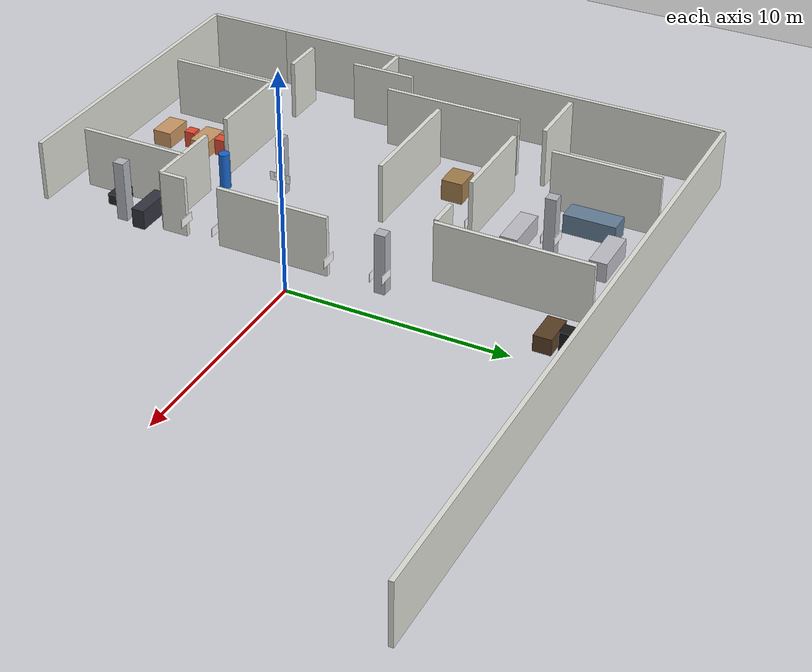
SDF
<sdf version="1.9">
 <world name="realistic_facility_world">
  <model name="ground_plane">
   <static>true</static>
   <link name="link">
    <collision name="collision">
     <geometry><plane><normal>0 0 1</normal><size>36 30</size></plane></geometry>
    </collision>
    <visual name="visual">
     <geometry><plane><normal>0 0 1</normal><size>36 30</size></plane></geometry>
     <material>
      <ambient>0.82 0.82 0.85 1</ambient>
      <diffuse>0.82 0.82 0.85 1</diffuse>
      <specular>0.15 0.15 0.15 1</specular>
     </material>
    </visual>
   </link>
  </model>
  <model name="wall_south_left">
   <static>true</static>
   <pose>-8.750 -13.000 1.4 0 0 0</pose>
   <link name="link">
    <collision name="collision"><geometry><box><size>14.500 0.200 2.8</size></box></geometry></collision>
    <visual name="visual">
     <geometry><box><size>14.500 0.200 2.8</size></box></geometry>
     <material>
      <ambient>0.88 0.88 0.85 1</ambient>
      <diffuse>0.88 0.88 0.85 1</diffuse>
      <specular>0.1 0.1 0.1 1</specular>
     </material>
    </visual>
   </link>
  </model>
  <model name="wall_north">
   <static>true</static>
   <pose>0.000 13.000 1.4 0 0 0</pose>
   <link name="link">
    <collision name="collision"><geometry><box><size>32.000 0.200 2.8</size></box></geometry></collision>
    <visual name="visual">
     <geometry><box><size>32.000 0.200 2.8</size></box></geometry>
     <material>
      <ambient>0.88 0.88 0.85 1</ambient>
      <diffuse>0.88 0.88 0.85 1</diffuse>
      <specular>0.1 0.1 0.1 1</specular>
     </material>
    </visual>
   </link>
  </model>
  <model name="wall_west_south">
   <static>true</static>
   <pose>-16.000 -11.000 1.4 0 0 0</pose>
   <link name="link">
    <collision name="collision"><geometry><box><size>0.200 4.000 2.8</size></box></geometry></collision>
    <visual name="visual">
     <geometry><box><size>0.200 4.000 2.8</size></box></geometry>
     <material>
      <ambient>0.88 0.88 0.85 1</ambient>
      <diffuse>0.88 0.88 0.85 1</diffuse>
      <specular>0.1 0.1 0.1 1</specular>
     </material>
    </visual>
   </link>
  </model>
  <model name="wall_west_mid_north">
   <static>true</static>
   <pose>-16.000 2.000 1.4 0 0 0</pose>
   <link name="link">
    <collision name="collision"><geometry><box><size>0.200 22.000 2.8</size></box></geometry></collision>
    <visual name="visual">
     <geometry><box><size>0.200 22.000 2.8</size></box></geometry>
     <material>
      <ambient>0.88 0.88 0.85 1</ambient>
      <diffuse>0.88 0.88 0.85 1</diffuse>
      <specular>0.1 0.1 0.1 1</specular>
     </material>
    </visual>
   </link>
  </model>
  <model name="wall_rec_div_w1_a">
   <static>true</static>
   <pose>-14.014 -7.000 1.4 0 0 0</pose>
   <link name="link">
    <collision name="collision"><geometry><box><size>1.950 0.200 2.8</size></box></geometry></collision>
    <visual name="visual">
     <geometry><box><size>1.950 0.200 2.8</size></box></geometry>
     <material>
      <ambient>0.88 0.88 0.85 1</ambient>
      <diffuse>0.88 0.88 0.85 1</diffuse>
      <specular>0.1 0.1 0.1 1</specular>
     </material>
    </visual>
   </link>
  </model>
  <model name="wall_rec_div_w1_b">
   <static>true</static>
   <pose>-9.375 -7.000 1.4 0 0 0</pose>
   <link name="link">
    <collision name="collision"><geometry><box><size>4.750 0.200 2.8</size></box></geometry></collision>
    <visual name="visual">
     <geometry><box><size>4.750 0.200 2.8</size></box></geometry>
     <material>
      <ambient>0.88 0.88 0.85 1</ambient>
      <diffuse>0.88 0.88 0.85 1</diffuse>
      <specular>0.1 0.1 0.1 1</specular>
     </material>
    </visual>
   </link>
  </model>
  <model name="wall_rec_div_w2">
   <static>true</static>
   <pose>-3.600 -7.000 1.4 0 0 0</pose>
   <link name="link">
    <collision name="collision"><geometry><box><size>3.600 0.200 2.8</size></box></geometry></collision>
    <visual name="visual">
     <geometry><box><size>3.600 0.200 2.8</size></box></geometry>
     <material>
      <ambient>0.88 0.88 0.85 1</ambient>
      <diffuse>0.88 0.88 0.85 1</diffuse>
      <specular>0.1 0.1 0.1 1</specular>
     </material>
    </visual>
   </link>
  </model>
  <model name="wall_spine_w_south">
   <static>true</static>
   <pose>-1.800 -6.400 1.4 0 0 0</pose>
   <link name="link">
    <collision name="collision"><geometry><box><size>0.200 1.200 2.8</size></box></geometry></collision>
    <visual name="visual">
     <geometry><box><size>0.200 1.200 2.8</size></box></geometry>
     <material>
      <ambient>0.88 0.88 0.85 1</ambient>
      <diffuse>0.88 0.88 0.85 1</diffuse>
      <specular>0.1 0.1 0.1 1</specular>
     </material>
    </visual>
   </link>
  </model>
  <model name="wall_spine_w_mid">
   <static>true</static>
   <pose>-1.800 -1.600 1.4 0 0 0</pose>
   <link name="link">
    <collision name="collision"><geometry><box><size>0.200 5.200 2.8</size></box></geometry></collision>
    <visual name="visual">
     <geometry><box><size>0.200 5.200 2.8</size></box></geometry>
     <material>
      <ambient>0.88 0.88 0.85 1</ambient>
      <diffuse>0.88 0.88 0.85 1</diffuse>
      <specular>0.1 0.1 0.1 1</specular>
     </material>
    </visual>
   </link>
  </model>
  <model name="wall_cafe_e">
   <static>true</static>
   <pose>-3.500 -9.500 1.4 0 0 0</pose>
   <link name="link">
    <collision name="collision"><geometry><box><size>0.200 5.000 2.8</size></box></geometry></collision>
    <visual name="visual">
     <geometry><box><size>0.200 5.000 2.8</size></box></geometry>
     <material>
      <ambient>0.88 0.88 0.85 1</ambient>
      <diffuse>0.88 0.88 0.85 1</diffuse>
      <specular>0.1 0.1 0.1 1</specular>
     </material>
    </visual>
   </link>
  </model>
  <model name="wall_cafe_w">
   <static>true</static>
   <pose>-11.000 -9.500 1.4 0 0 0</pose>
   <link name="link">
    <collision name="collision"><geometry><box><size>0.200 5.000 2.8</size></box></geometry></collision>
    <visual name="visual">
     <geometry><box><size>0.200 5.000 2.8</size></box></geometry>
     <material>
      <ambient>0.88 0.88 0.85 1</ambient>
      <diffuse>0.88 0.88 0.85 1</diffuse>
      <specular>0.1 0.1 0.1 1</specular>
     </material>
    </visual>
   </link>
  </model>
  <model name="wall_utility_n">
   <static>true</static>
   <pose>-15.200 -3.000 1.4 0 0 0</pose>
   <link name="link">
    <collision name="collision"><geometry><box><size>1.600 0.200 2.8</size></box></geometry></collision>
    <visual name="visual">
     <geometry><box><size>1.600 0.200 2.8</size></box></geometry>
     <material>
      <ambient>0.88 0.88 0.85 1</ambient>
      <diffuse>0.88 0.88 0.85 1</diffuse>
      <specular>0.1 0.1 0.1 1</specular>
     </material>
    </visual>
   </link>
  </model>
  <model name="wall_utility_e">
   <static>true</static>
   <pose>-14.400 -2.937 1.4 0 0 0</pose>
   <link name="link">
    <collision name="collision"><geometry><box><size>0.200 3.000 2.8</size></box></geometry></collision>
    <visual name="visual">
     <geometry><box><size>0.200 3.000 2.8</size></box></geometry>
     <material>
      <ambient>0.88 0.88 0.85 1</ambient>
      <diffuse>0.88 0.88 0.85 1</diffuse>
      <specular>0.1 0.1 0.1 1</specular>
     </material>
    </visual>
   </link>
  </model>
  <model name="wall_cross_w">
   <static>true</static>
   <pose>-9.350 1.000 1.4 0 0 0</pose>
   <link name="link">
    <collision name="collision"><geometry><box><size>5.700 0.200 2.8</size></box></geometry></collision>
    <visual name="visual">
     <geometry><box><size>5.700 0.200 2.8</size></box></geometry>
     <material>
      <ambient>0.88 0.88 0.85 1</ambient>
      <diffuse>0.88 0.88 0.85 1</diffuse>
      <specular>0.1 0.1 0.1 1</specular>
     </material>
    </visual>
   </link>
  </model>
  <model name="wall_office_w">
   <static>true</static>
   <pose>-3.500 8.500 1.4 0 0 0</pose>
   <link name="link">
    <collision name="collision"><geometry><box><size>0.200 7.000 2.8</size></box></geometry></collision>
    <visual name="visual">
     <geometry><box><size>0.200 7.000 2.8</size></box></geometry>
     <material>
      <ambient>0.88 0.88 0.85 1</ambient>
      <diffuse>0.88 0.88 0.85 1</diffuse>
      <specular>0.1 0.1 0.1 1</specular>
     </material>
    </visual>
   </link>
  </model>
  <model name="wall_storage_div_w">
   <static>true</static>
   <pose>-9.250 5.000 1.4 0 0 0</pose>
   <link name="link">
    <collision name="collision"><geometry><box><size>4.500 0.200 2.8</size></box></geometry></collision>
    <visual name="visual">
     <geometry><box><size>4.500 0.200 2.8</size></box></geometry>
     <material>
      <ambient>0.88 0.88 0.85 1</ambient>
      <diffuse>0.88 0.88 0.85 1</diffuse>
      <specular>0.1 0.1 0.1 1</specular>
     </material>
    </visual>
   </link>
  </model>
  <model name="wall_storage_div_e">
   <static>true</static>
   <pose>-4.357 5.000 1.4 0 0 0</pose>
   <link name="link">
    <collision name="collision"><geometry><box><size>1.400 0.200 2.8</size></box></geometry></collision>
    <visual name="visual">
     <geometry><box><size>1.400 0.200 2.8</size></box></geometry>
     <material>
      <ambient>0.88 0.88 0.85 1</ambient>
      <diffuse>0.88 0.88 0.85 1</diffuse>
      <specular>0.1 0.1 0.1 1</specular>
     </material>
    </visual>
   </link>
  </model>
  <model name="wall_vault_e">
   <static>true</static>
   <pose>-11.000 9.500 1.4 0 0 0</pose>
   <link name="link">
    <collision name="collision"><geometry><box><size>0.200 5.000 2.8</size></box></geometry></collision>
    <visual name="visual">
     <geometry><box><size>0.200 5.000 2.8</size></box></geometry>
     <material>
      <ambient>0.88 0.88 0.85 1</ambient>
      <diffuse>0.88 0.88 0.85 1</diffuse>
      <specular>0.1 0.1 0.1 1</specular>
     </material>
    </visual>
   </link>
  </model>
  <model name="wall_vault_s">
   <static>true</static>
   <pose>-14.000 6.000 1.4 0 0 0</pose>
   <link name="link">
    <collision name="collision"><geometry><box><size>3.000 0.200 2.8</size></box></geometry></collision>
    <visual name="visual">
     <geometry><box><size>3.000 0.200 2.8</size></box></geometry>
     <material>
      <ambient>0.88 0.88 0.85 1</ambient>
      <diffuse>0.88 0.88 0.85 1</diffuse>
      <specular>0.1 0.1 0.1 1</specular>
     </material>
    </visual>
   </link>
  </model>
  <model name="wall_west_bypass_inner">
   <static>true</static>
   <pose>-12.900 1.350 1.4 0 0 0</pose>
   <link name="link">
    <collision name="collision"><geometry><box><size>0.200 6.500 2.8</size></box></geometry></collision>
    <visual name="visual">
     <geometry><box><size>0.200 6.500 2.8</size></box></geometry>
     <material>
      <ambient>0.88 0.88 0.85 1</ambient>
      <diffuse>0.88 0.88 0.85 1</diffuse>
      <specular>0.1 0.1 0.1 1</specular>
     </material>
    </visual>
   </link>
  </model>
  <model name="pillar_rec_1">
   <static>true</static>
   <pose>-1.800 -9.000 1.4 0 0 0</pose>
   <link name="link">
    <collision name="collision"><geometry><box><size>0.500 0.500 2.8</size></box></geometry></collision>
    <visual name="visual">
     <geometry><box><size>0.500 0.500 2.8</size></box></geometry>
     <material><ambient>0.7 0.72 0.75 1</ambient><diffuse>0.7 0.72 0.75 1</diffuse></material>
    </visual>
   </link>
  </model>
  <model name="pillar_center_1">
   <static>true</static>
   <pose>-1.800 3.500 1.4 0 0 0</pose>
   <link name="link">
    <collision name="collision"><geometry><box><size>0.500 0.500 2.8</size></box></geometry></collision>
    <visual name="visual">
     <geometry><box><size>0.500 0.500 2.8</size></box></geometry>
     <material><ambient>0.7 0.72 0.75 1</ambient><diffuse>0.7 0.72 0.75 1</diffuse></material>
    </visual>
   </link>
  </model>
  <model name="pillar_lab_1">
   <static>true</static>
   <pose>-7.500 8.500 1.4 0 0 0</pose>
   <link name="link">
    <collision name="collision"><geometry><box><size>0.500 0.500 2.8</size></box></geometry></collision>
    <visual name="visual">
     <geometry><box><size>0.500 0.500 2.8</size></box></geometry>
     <material><ambient>0.7 0.72 0.75 1</ambient><diffuse>0.7 0.72 0.75 1</diffuse></material>
    </visual>
   </link>
  </model>
  <model name="pillar_j3">
   <static>true</static>
   <pose>-6.800 -4.000 1.4 0 0 0</pose>
   <link name="link">
    <collision name="collision"><geometry><box><size>0.400 0.400 2.8</size></box></geometry></collision>
    <visual name="visual">
     <geometry><box><size>0.400 0.400 2.8</size></box></geometry>
     <material><ambient>0.7 0.72 0.75 1</ambient><diffuse>0.7 0.72 0.75 1</diffuse></material>
    </visual>
   </link>
  </model>
  <model name="reception_desk">
   <static>true</static>
   <pose>-2.200 -8.000 0.450 0 0 0</pose>
   <link name="link">
    <collision name="collision"><geometry><box><size>1.800 0.600 0.900</size></box></geometry></collision>
    <visual name="visual">
     <geometry><box><size>1.800 0.600 0.900</size></box></geometry>
     <material><ambient>0.20 0.20 0.25 1</ambient><diffuse>0.20 0.20 0.25 1</diffuse></material>
    </visual>
   </link>
  </model>
  <model name="waiting_bench_w">
   <static>true</static>
   <pose>-3.200 -10.000 0.250 0 0 0</pose>
   <link name="link">
    <collision name="collision"><geometry><box><size>1.600 0.600 0.500</size></box></geometry></collision>
    <visual name="visual">
     <geometry><box><size>1.600 0.600 0.500</size></box></geometry>
     <material><ambient>0.15 0.15 0.15 1</ambient><diffuse>0.15 0.15 0.15 1</diffuse></material>
    </visual>
   </link>
  </model>
  <model name="office_desk_1">
   <static>true</static>
   <pose>-1.500 11.000 0.380 0 0 0</pose>
   <link name="link">
    <collision name="collision"><geometry><box><size>1.500 0.800 0.750</size></box></geometry></collision>
    <visual name="visual">
     <geometry><box><size>1.500 0.800 0.750</size></box></geometry>
     <material><ambient>0.35 0.25 0.15 1</ambient><diffuse>0.35 0.25 0.15 1</diffuse></material>
    </visual>
   </link>
  </model>
  <model name="office_chair_1">
   <static>true</static>
   <pose>-1.500 11.800 0.450 0 0 0</pose>
   <link name="link">
    <collision name="collision"><geometry><box><size>0.600 0.600 0.900</size></box></geometry></collision>
    <visual name="visual">
     <geometry><box><size>0.600 0.600 0.900</size></box></geometry>
     <material><ambient>0.10 0.10 0.10 1</ambient><diffuse>0.10 0.10 0.10 1</diffuse></material>
    </visual>
   </link>
  </model>
  <model name="lab_bench_1">
   <static>true</static>
   <pose>-7.600 7.000 0.450 0 0 0</pose>
   <link name="link">
    <collision name="collision"><geometry><box><size>2.200 0.800 0.900</size></box></geometry></collision>
    <visual name="visual">
     <geometry><box><size>2.200 0.800 0.900</size></box></geometry>
     <material><ambient>0.75 0.75 0.78 1</ambient><diffuse>0.75 0.75 0.78 1</diffuse></material>
    </visual>
   </link>
  </model>
  <model name="lab_bench_2">
   <static>true</static>
   <pose>-7.600 11.000 0.450 0 0 0</pose>
   <link name="link">
    <collision name="collision"><geometry><box><size>2.200 0.800 0.900</size></box></geometry></collision>
    <visual name="visual">
     <geometry><box><size>2.200 0.800 0.900</size></box></geometry>
     <material><ambient>0.75 0.75 0.78 1</ambient><diffuse>0.75 0.75 0.78 1</diffuse></material>
    </visual>
   </link>
  </model>
  <model name="room_a_assembly_bench">
   <static>true</static>
   <pose>-9.800 9.500 0.450 0 0 0</pose>
   <link name="link">
    <collision name="collision"><geometry><box><size>1.000 2.400 0.900</size></box></geometry></collision>
    <visual name="visual">
     <geometry><box><size>1.000 2.400 0.900</size></box></geometry>
     <material><ambient>0.40 0.50 0.60 1</ambient><diffuse>0.40 0.50 0.60 1</diffuse></material>
    </visual>
   </link>
  </model>
  <model name="charging_dock_station">
   <static>true</static>
   <pose>-15.200 2.000 0.500 0 0 0</pose>
   <link name="link">
    <collision name="collision"><geometry><box><size>0.600 1.000 1.000</size></box></geometry></collision>
    <visual name="visual">
     <geometry><box><size>0.600 1.000 1.000</size></box></geometry>
     <material><ambient>0.10 0.70 0.20 1</ambient><diffuse>0.10 0.70 0.20 1</diffuse></material>
    </visual>
   </link>
  </model>
  <model name="cafe_table_1">
   <static>true</static>
   <pose>-8.500 -9.000 0.380 0 0 0</pose>
   <link name="link">
    <collision name="collision"><geometry><box><size>1.400 0.900 0.750</size></box></geometry></collision>
    <visual name="visual">
     <geometry><box><size>1.400 0.900 0.750</size></box></geometry>
     <material><ambient>0.80 0.60 0.40 1</ambient><diffuse>0.80 0.60 0.40 1</diffuse></material>
    </visual>
   </link>
  </model>
  <model name="cafe_table_2">
   <static>true</static>
   <pose>-8.500 -11.000 0.380 0 0 0</pose>
   <link name="link">
    <collision name="collision"><geometry><box><size>1.400 0.900 0.750</size></box></geometry></collision>
    <visual name="visual">
     <geometry><box><size>1.400 0.900 0.750</size></box></geometry>
     <material><ambient>0.80 0.60 0.40 1</ambient><diffuse>0.80 0.60 0.40 1</diffuse></material>
    </visual>
   </link>
  </model>
  <model name="cafe_chair_1">
   <static>true</static>
   <pose>-8.500 -8.200 0.400 0 0 0</pose>
   <link name="link">
    <collision name="collision"><geometry><box><size>0.500 0.500 0.800</size></box></geometry></collision>
    <visual name="visual">
     <geometry><box><size>0.500 0.500 0.800</size></box></geometry>
     <material><ambient>0.90 0.30 0.20 1</ambient><diffuse>0.90 0.30 0.20 1</diffuse></material>
    </visual>
   </link>
  </model>
  <model name="cafe_chair_2">
   <static>true</static>
   <pose>-8.500 -9.800 0.400 0 0 0</pose>
   <link name="link">
    <collision name="collision"><geometry><box><size>0.500 0.500 0.800</size></box></geometry></collision>
    <visual name="visual">
     <geometry><box><size>0.500 0.500 0.800</size></box></geometry>
     <material><ambient>0.90 0.30 0.20 1</ambient><diffuse>0.90 0.30 0.20 1</diffuse></material>
    </visual>
   </link>
  </model>
  <model name="storage_box_stack">
   <static>true</static>
   <pose>-10.000 3.000 0.500 0 0 0</pose>
   <link name="link">
    <collision name="collision"><geometry><box><size>1.200 1.000 1.000</size></box></geometry></collision>
    <visual name="visual">
     <geometry><box><size>1.200 1.000 1.000</size></box></geometry>
     <material><ambient>0.65 0.50 0.30 1</ambient><diffuse>0.65 0.50 0.30 1</diffuse></material>
    </visual>
   </link>
  </model>
  <model name="sign_j1_exit">
   <static>true</static>
   <pose>-1.650 -4.250 0.850 0.0 0.0 3.1416</pose>
   <link name="link">
    <visual name="board_visual">
     <geometry><box><size>0.8 0.03 0.4</size></box></geometry>
     <material>
      <ambient>1.0 1.0 1.0 1.0</ambient>
      <diffuse>1.0 1.0 1.0 1.0</diffuse>
      <specular>0.2 0.2 0.2 1.0</specular>
      <emissive>0.08 0.08 0.08 1.0</emissive>
      <pbr>
       <metal>
        <albedo_map>/home/soham-darade/CV_Autonomous_Navigation/ros2_ws/src/autonomous_robot_gazebo/materials/textures/signs/exit_left.png</albedo_map>
        <roughness>0.2</roughness>
        <metalness>0.0</metalness>
       </metal>
      </pbr>
     </material>
    </visual>
    <collision name="board_collision"><geometry><box><size>0.8 0.03 0.4</size></box></geometry></collision>
   </link>
  </model>
  <model name="sign_j1_reception_south">
   <static>true</static>
   <pose>-1.650 -5.750 0.850 0.0 0.0 0.0000</pose>
   <link name="link">
    <visual name="board_visual">
     <geometry><box><size>0.8 0.03 0.4</size></box></geometry>
     <material>
      <ambient>1.0 1.0 1.0 1.0</ambient>
      <diffuse>1.0 1.0 1.0 1.0</diffuse>
      <specular>0.2 0.2 0.2 1.0</specular>
      <emissive>0.08 0.08 0.08 1.0</emissive>
      <pbr>
       <metal>
        <albedo_map>/home/soham-darade/CV_Autonomous_Navigation/ros2_ws/src/autonomous_robot_gazebo/materials/textures/signs/reception_straight.png</albedo_map>
        <roughness>0.2</roughness>
        <metalness>0.0</metalness>
       </metal>
      </pbr>
     </material>
    </visual>
    <collision name="board_collision"><geometry><box><size>0.8 0.03 0.4</size></box></geometry></collision>
   </link>
  </model>
  <model name="sign_j3_exit">
   <static>true</static>
   <pose>-6.550 -4.100 0.850 0.0 0.0 -1.5708</pose>
   <link name="link">
    <visual name="board_visual">
     <geometry><box><size>0.8 0.03 0.4</size></box></geometry>
     <material>
      <ambient>1.0 1.0 1.0 1.0</ambient>
      <diffuse>1.0 1.0 1.0 1.0</diffuse>
      <specular>0.2 0.2 0.2 1.0</specular>
      <emissive>0.08 0.08 0.08 1.0</emissive>
      <pbr>
       <metal>
        <albedo_map>/home/soham-darade/CV_Autonomous_Navigation/ros2_ws/src/autonomous_robot_gazebo/materials/textures/signs/exit_straight.png</albedo_map>
        <roughness>0.2</roughness>
        <metalness>0.0</metalness>
       </metal>
      </pbr>
     </material>
    </visual>
    <collision name="board_collision"><geometry><box><size>0.8 0.03 0.4</size></box></geometry></collision>
   </link>
  </model>
  <model name="sign_j3_storage">
   <static>true</static>
   <pose>-6.550 -3.900 0.850 0.0 0.0 -1.5708</pose>
   <link name="link">
    <visual name="board_visual">
     <geometry><box><size>0.8 0.03 0.4</size></box></geometry>
     <material>
      <ambient>1.0 1.0 1.0 1.0</ambient>
      <diffuse>1.0 1.0 1.0 1.0</diffuse>
      <specular>0.2 0.2 0.2 1.0</specular>
      <emissive>0.08 0.08 0.08 1.0</emissive>
      <pbr>
       <metal>
        <albedo_map>/home/soham-darade/CV_Autonomous_Navigation/ros2_ws/src/autonomous_robot_gazebo/materials/textures/signs/storage_right.png</albedo_map>
        <roughness>0.2</roughness>
        <metalness>0.0</metalness>
       </metal>
      </pbr>
     </material>
    </visual>
    <collision name="board_collision"><geometry><box><size>0.8 0.03 0.4</size></box></geometry></collision>
   </link>
  </model>
  <model name="sign_j4_office">
   <static>true</static>
   <pose>-1.650 3.200 0.850 0.0 0.0 3.1416</pose>
   <link name="link">
    <visual name="board_visual">
     <geometry><box><size>0.8 0.03 0.4</size></box></geometry>
     <material>
      <ambient>1.0 1.0 1.0 1.0</ambient>
      <diffuse>1.0 1.0 1.0 1.0</diffuse>
      <specular>0.2 0.2 0.2 1.0</specular>
      <emissive>0.08 0.08 0.08 1.0</emissive>
      <pbr>
       <metal>
        <albedo_map>/home/soham-darade/CV_Autonomous_Navigation/ros2_ws/src/autonomous_robot_gazebo/materials/textures/signs/office_straight.png</albedo_map>
        <roughness>0.2</roughness>
        <metalness>0.0</metalness>
       </metal>
      </pbr>
     </material>
    </visual>
    <collision name="board_collision"><geometry><box><size>0.8 0.03 0.4</size></box></geometry></collision>
   </link>
  </model>
  <model name="sign_j4_lab">
   <static>true</static>
   <pose>-1.650 1.100 0.850 0.0 0.0 3.1416</pose>
   <link name="link">
    <visual name="board_visual">
     <geometry><box><size>0.8 0.03 0.4</size></box></geometry>
     <material>
      <ambient>1.0 1.0 1.0 1.0</ambient>
      <diffuse>1.0 1.0 1.0 1.0</diffuse>
      <specular>0.2 0.2 0.2 1.0</specular>
      <emissive>0.08 0.08 0.08 1.0</emissive>
      <pbr>
       <metal>
        <albedo_map>/home/soham-darade/CV_Autonomous_Navigation/ros2_ws/src/autonomous_robot_gazebo/materials/textures/signs/lab_left.png</albedo_map>
        <roughness>0.2</roughness>
        <metalness>0.0</metalness>
       </metal>
      </pbr>
     </material>
    </visual>
    <collision name="board_collision"><geometry><box><size>0.8 0.03 0.4</size></box></geometry></collision>
   </link>
  </model>
  <model name="sign_j4_reception">
   <static>true</static>
   <pose>-1.650 3.750 0.850 0.0 0.0 0.0000</pose>
   <link name="link">
    <visual name="board_visual">
     <geometry><box><size>0.8 0.03 0.4</size></box></geometry>
     <material>
      <ambient>1.0 1.0 1.0 1.0</ambient>
      <diffuse>1.0 1.0 1.0 1.0</diffuse>
      <specular>0.2 0.2 0.2 1.0</specular>
      <emissive>0.08 0.08 0.08 1.0</emissive>
      <pbr>
       <metal>
        <albedo_map>/home/soham-darade/CV_Autonomous_Navigation/ros2_ws/src/autonomous_robot_gazebo/materials/textures/signs/reception_straight.png</albedo_map>
        <roughness>0.2</roughness>
        <metalness>0.0</metalness>
       </metal>
      </pbr>
     </material>
    </visual>
    <collision name="board_collision"><geometry><box><size>0.8 0.03 0.4</size></box></geometry></collision>
   </link>
  </model>
  <model name="sign_j7_storage">
   <static>true</static>
   <pose>-5.300 4.900 0.850 0.0 0.0 3.1416</pose>
   <link name="link">
    <visual name="board_visual">
     <geometry><box><size>0.8 0.03 0.4</size></box></geometry>
     <material>
      <ambient>1.0 1.0 1.0 1.0</ambient>
      <diffuse>1.0 1.0 1.0 1.0</diffuse>
      <specular>0.2 0.2 0.2 1.0</specular>
      <emissive>0.08 0.08 0.08 1.0</emissive>
      <pbr>
       <metal>
        <albedo_map>/home/soham-darade/CV_Autonomous_Navigation/ros2_ws/src/autonomous_robot_gazebo/materials/textures/signs/storage_straight.png</albedo_map>
        <roughness>0.2</roughness>
        <metalness>0.0</metalness>
       </metal>
      </pbr>
     </material>
    </visual>
    <collision name="board_collision"><geometry><box><size>0.8 0.03 0.4</size></box></geometry></collision>
   </link>
  </model>
  <model name="sign_j7_charging">
   <static>true</static>
   <pose>-7.100 4.900 0.850 0.0 0.0 3.1416</pose>
   <link name="link">
    <visual name="board_visual">
     <geometry><box><size>0.8 0.03 0.4</size></box></geometry>
     <material>
      <ambient>1.0 1.0 1.0 1.0</ambient>
      <diffuse>1.0 1.0 1.0 1.0</diffuse>
      <specular>0.2 0.2 0.2 1.0</specular>
      <emissive>0.08 0.08 0.08 1.0</emissive>
      <pbr>
       <metal>
        <albedo_map>/home/soham-darade/CV_Autonomous_Navigation/ros2_ws/src/autonomous_robot_gazebo/materials/textures/signs/charging_left.png</albedo_map>
        <roughness>0.2</roughness>
        <metalness>0.0</metalness>
       </metal>
      </pbr>
     </material>
    </visual>
    <collision name="board_collision"><geometry><box><size>0.8 0.03 0.4</size></box></geometry></collision>
   </link>
  </model>
  <model name="sign_j8_room_a">
   <static>true</static>
   <pose>-7.500 8.200 0.850 0.0 0.0 3.1416</pose>
   <link name="link">
    <visual name="board_visual">
     <geometry><box><size>0.8 0.03 0.4</size></box></geometry>
     <material>
      <ambient>1.0 1.0 1.0 1.0</ambient>
      <diffuse>1.0 1.0 1.0 1.0</diffuse>
      <specular>0.2 0.2 0.2 1.0</specular>
      <emissive>0.08 0.08 0.08 1.0</emissive>
      <pbr>
       <metal>
        <albedo_map>/home/soham-darade/CV_Autonomous_Navigation/ros2_ws/src/autonomous_robot_gazebo/materials/textures/signs/room_a_straight.png</albedo_map>
        <roughness>0.2</roughness>
        <metalness>0.0</metalness>
       </metal>
      </pbr>
     </material>
    </visual>
    <collision name="board_collision"><geometry><box><size>0.8 0.03 0.4</size></box></geometry></collision>
   </link>
  </model>
  <model name="sign_j8_storage">
   <static>true</static>
   <pose>-7.500 8.800 0.850 0.0 0.0 0.0000</pose>
   <link name="link">
    <visual name="board_visual">
     <geometry><box><size>0.8 0.03 0.4</size></box></geometry>
     <material>
      <ambient>1.0 1.0 1.0 1.0</ambient>
      <diffuse>1.0 1.0 1.0 1.0</diffuse>
      <specular>0.2 0.2 0.2 1.0</specular>
      <emissive>0.08 0.08 0.08 1.0</emissive>
      <pbr>
       <metal>
        <albedo_map>/home/soham-darade/CV_Autonomous_Navigation/ros2_ws/src/autonomous_robot_gazebo/materials/textures/signs/storage_straight.png</albedo_map>
        <roughness>0.2</roughness>
        <metalness>0.0</metalness>
       </metal>
      </pbr>
     </material>
    </visual>
    <collision name="board_collision"><geometry><box><size>0.8 0.03 0.4</size></box></geometry></collision>
   </link>
  </model>
  <model name="dynamic_person">
   <pose>-6.0 -6.5 0.85 0 0 1.5708</pose>
   <link name="person_link">
    <inertial><mass>70.0</mass><inertia><ixx>5.0</ixx><iyy>5.0</iyy><izz>1.5</izz></inertia></inertial>
    <collision name="person_collision">
     <geometry><cylinder><radius>0.25</radius><length>1.7</length></cylinder></geometry>
    </collision>
    <visual name="person_visual">
     <geometry><cylinder><radius>0.25</radius><length>1.7</length></cylinder></geometry>
     <material><ambient>0.1 0.4 0.8 1</ambient><diffuse>0.1 0.4 0.8 1</diffuse></material>
    </visual>
   </link>
   <plugin filename="gz-sim-velocity-control-system" name="gz::sim::systems::VelocityControl">
    <link_name>person_link</link_name>
    <topic>/person/cmd_vel</topic>
   </plugin>
  </model>
 </world>
</sdf>
